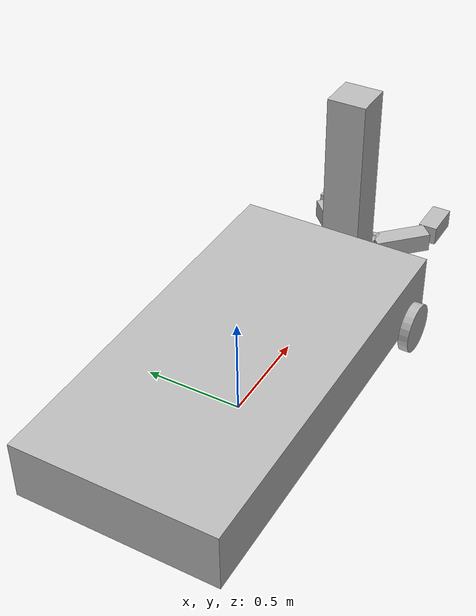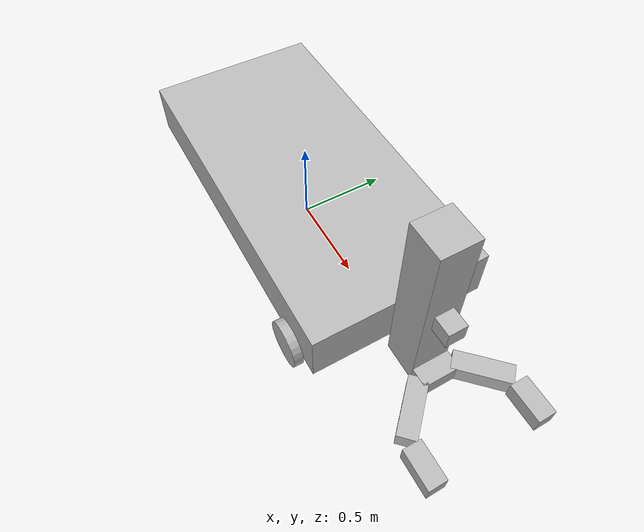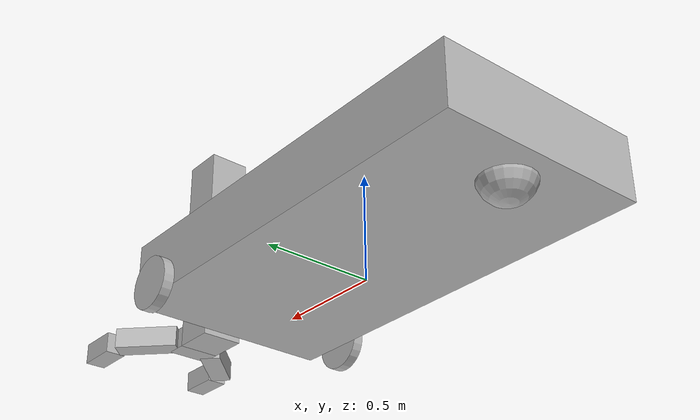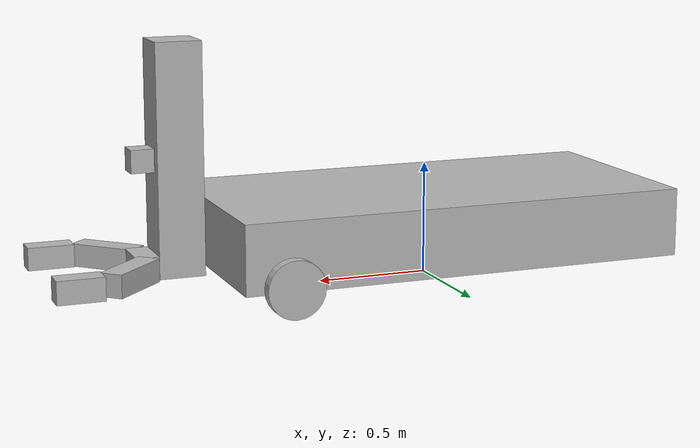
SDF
<?xml version="1.0" ?>
<sdf version="1.5">
  <model name="simple_mobile_manipulator">

    <include>
      <uri>model://my_gripper</uri>
      <pose>1.3 0 0.1 0 0 0</pose>
    </include>

    <include>
      <uri>model://my_robot</uri>
      <pose>0 0 0 0 0 0</pose>
    </include>

    <joint name="arm_gripper_joint" type="fixed">
      <parent>mobile_base::chassis</parent>
      <child>simple_gripper::riser</child>
    </joint>

    <!-- attach sensor to the gripper -->
    <include>
      <uri>model://camera</uri>
      <pose>1.3 0 0.6 0 0 0</pose>
    </include>

    <joint name="camera_joint" type="fixed">
      <child>camera::link</child>
      <parent>simple_gripper::palm</parent>
    </joint>

  </model>
</sdf>

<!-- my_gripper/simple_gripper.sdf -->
<sdf version="1.4">
    <model name="simple_gripper">
        <link name="riser">
            <pose>-0.15 0.0 0.5 0 0 0</pose>
            <inertial>
                <pose>0 0 -0.5 0 0 0</pose>
                <inertia>
                    <ixx>0.01</ixx>
                    <ixy>0</ixy>
                    <ixz>0</ixz>
                    <iyy>0.01</iyy>
                    <iyz>0</iyz>
                    <izz>0.01</izz>
                </inertia>
                <mass>10.0</mass>
            </inertial>
            <collision name="collision">
                <geometry>
                    <box>
                        <size>0.2 0.2 1.0</size>
                    </box>
                </geometry>
            </collision>
            <visual name="visual">
                <geometry>
                    <box>
                        <size>0.2 0.2 1.0</size>
                    </box>
                </geometry>
                <material>
                    <script>Gazebo/Purple</script>
                </material>
            </visual>
        </link>
        <link name="palm">
            <pose>0.0 0.0 0.05 0 0 0</pose>
            <inertial>
                <inertia>
                    <ixx>0.01</ixx>
                    <ixy>0</ixy>
                    <ixz>0</ixz>
                    <iyy>0.01</iyy>
                    <iyz>0</iyz>
                    <izz>0.01</izz>
                </inertia>
                <mass>0.5</mass>
            </inertial>
            <collision name="collision">
                <geometry>
                    <box>
                        <size>0.1 0.2 0.1</size>
                    </box>
                </geometry>
            </collision>
            <visual name="visual">
                <geometry>
                    <box>
                        <size>0.1 0.2 0.1</size>
                    </box>
                </geometry>
                <material>
                    <script>Gazebo/Red</script>
                </material>
            </visual>
        </link>
        <link name="left_finger">
            <pose>0.1 0.2 0.05 0 0 -0.78539</pose>
            <inertial>
                <inertia>
                    <ixx>0.01</ixx>
                    <ixy>0</ixy>
                    <ixz>0</ixz>
                    <iyy>0.01</iyy>
                    <iyz>0</iyz>
                    <izz>0.01</izz>
                </inertia>
                <mass>0.1</mass>
            </inertial>
            <collision name="collision">
                <geometry>
                    <box>
                        <size>0.1 0.3 0.1</size>
                    </box>
                </geometry>
            </collision>
            <visual name="visual">
                <geometry>
                    <box>
                        <size>0.1 0.3 0.1</size>
                    </box>
                </geometry>
                <material>
                    <script>Gazebo/Blue</script>
                </material>
            </visual>
        </link>
        <link name="left_finger_tip">
            <pose>0.336 0.3 0.05 0 0 1.5707</pose>
            <inertial>
                <inertia>
                    <ixx>0.01</ixx>
                    <ixy>0</ixy>
                    <ixz>0</ixz>
                    <iyy>0.01</iyy>
                    <iyz>0</iyz>
                    <izz>0.01</izz>
                </inertia>
                <mass>0.1</mass>
            </inertial>
            <collision name="collision">
                <geometry>
                    <box>
                        <size>0.1 0.2 0.1</size>
                    </box>
                </geometry>
            </collision>
            <visual name="visual">
                <geometry>
                    <box>
                        <size>0.1 0.2 0.1</size>
                    </box>
                </geometry>
                <material>
                    <script>Gazebo/Blue</script>
                </material>
            </visual>
        </link>
        <link name="right_finger">
            <pose>0.1 -0.2 0.05 0 0 .78539</pose>
            <inertial>
                <inertia>
                    <ixx>0.01</ixx>
                    <ixy>0</ixy>
                    <ixz>0</ixz>
                    <iyy>0.01</iyy>
                    <iyz>0</iyz>
                    <izz>0.01</izz>
                </inertia>
                <mass>0.1</mass>
            </inertial>
            <collision name="collision">
                <geometry>
                    <box>
                        <size>0.1 0.3 0.1</size>
                    </box>
                </geometry>
            </collision>
            <visual name="visual">
                <geometry>
                    <box>
                        <size>0.1 0.3 0.1</size>
                    </box>
                </geometry>
                <material>
                    <script>Gazebo/Green</script>
                </material>
            </visual>
        </link>
        <link name="right_finger_tip">
            <pose>0.336 -0.3 0.05 0 0 1.5707</pose>
            <inertial>
                <inertia>
                    <ixx>0.01</ixx>
                    <ixy>0</ixy>
                    <ixz>0</ixz>
                    <iyy>0.01</iyy>
                    <iyz>0</iyz>
                    <izz>0.01</izz>
                </inertia>
                <mass>0.1</mass>
            </inertial>
            <collision name="collision">
                <geometry>
                    <box>
                        <size>0.1 0.2 0.1</size>
                    </box>
                </geometry>
            </collision>
            <visual name="visual">
                <geometry>
                    <box>
                        <size>0.1 0.2 0.1</size>
                    </box>
                </geometry>
                <material>
                    <script>Gazebo/Green</script>
                </material>
            </visual>
        </link>
        <static>false</static>

          <joint name="palm_left_finger" type="revolute">
            <pose>0 -0.15 0 0 0 0</pose>
            <child>left_finger</child>
            <parent>palm</parent>
            <axis>
                <limit>
                    <lower>-0.4</lower>
                    <upper>0.4</upper>
                </limit>
                <xyz>0 0 1</xyz>
            </axis>
        </joint>
        <joint name="left_finger_tip" type="revolute">
            <pose>0 0.1 0 0 0 0</pose>
            <child>left_finger_tip</child>
            <parent>left_finger</parent>
            <axis>
                <limit>
                    <lower>-0.4</lower>
                    <upper>0.4</upper>
                </limit>
                <xyz>0 0 1</xyz>
            </axis>
        </joint>
        <joint name="palm_right_finger" type="revolute">
            <pose>0 0.15 0 0 0 0</pose>
            <child>right_finger</child>
            <parent>palm</parent>
            <axis>
                <limit>
                    <lower>-0.4</lower>
                    <upper>0.4</upper>
                </limit>
                <xyz>0 0 1</xyz>
            </axis>
        </joint>
        <joint name="right_finger_tip" type="revolute">
            <pose>0 0.1 0 0 0 0</pose>
            <child>right_finger_tip</child>
            <parent>right_finger</parent>
            <axis>
                <limit>
                    <lower>-0.4</lower>
                    <upper>0.4</upper>
                </limit>
                <xyz>0 0 1</xyz>
            </axis>
        </joint>
        <joint name="palm_riser" type="prismatic">
            <child>palm</child>
            <parent>riser</parent>
            <axis>
                <limit>
                    <lower>0</lower>
                    <upper>0.9</upper>
                </limit>
                <xyz>0 0 1</xyz>
            </axis>
        </joint>
    </model>
</sdf>

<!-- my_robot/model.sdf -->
<sdf version='1.5'>
  <model name="mobile_base">
    <link name='chassis'>
      <pose>0 0 .25 0 0 0</pose>

      <inertial>
        <mass>20.0</mass>
        <pose>-0.1 0 -0.1 0 0 0</pose>
        <inertia>
          <ixx>0.5</ixx>
          <iyy>1.0</iyy>
          <izz>0.1</izz>
        </inertia>
      </inertial>

      <collision name='collision'>
        <geometry>
          <box>
            <size>2 1 0.3</size>
          </box>
        </geometry>
      </collision>

      <visual name='visual'>
        <geometry>
          <box>
            <size>2 1 0.3</size>
          </box>
        </geometry>
      </visual>

      <collision name='caster_collision'>
        <pose>-0.8 0 -0.125 0 0 0</pose>
        <geometry>
          <sphere>
            <radius>.125</radius>
          </sphere>
        </geometry>

        <surface>
          <friction>
            <ode>
              <mu>0</mu>
              <mu2>0</mu2>
            </ode>
          </friction>
        </surface>
      </collision>

      <visual name='caster_visual'>
        <pose>-0.8 0 -0.125 0 0 0</pose>
        <geometry>
          <sphere>
            <radius>.125</radius>
          </sphere>
        </geometry>
      </visual>
    </link>
    <link name="left_wheel">
      <pose>0.8 0.535 0.125 0 1.5707 1.5707</pose>
      <collision name="collision">
        <geometry>
          <cylinder>
            <radius>.125</radius>
            <length>.05</length>
          </cylinder>
        </geometry>
      </collision>
      <visual name="visual">
        <geometry>
          <cylinder>
            <radius>.125</radius>
            <length>.05</length>
          </cylinder>
        </geometry>
      </visual>
    </link>

    <link name="right_wheel">
      <pose>0.8 -0.535 0.125 0 1.5707 1.5707</pose>
      <collision name="collision">
        <geometry>
          <cylinder>
            <radius>.125</radius>
            <length>.05</length>
          </cylinder>
        </geometry>
      </collision>
      <visual name="visual">
        <geometry>
          <cylinder>
            <radius>.125</radius>
            <length>.05</length>
          </cylinder>
        </geometry>
      </visual>
    </link>

    <joint type="revolute" name="left_wheel_hinge">
      <pose>0 0 -0.03 0 0 0</pose>
      <child>left_wheel</child>
      <parent>chassis</parent>
      <axis>
        <use_parent_model_frame>true</use_parent_model_frame>
        <xyz>0 1 0</xyz>
      </axis>
    </joint>

    <joint type="revolute" name="right_wheel_hinge">
      <pose>0 0 0.03 0 0 0</pose>
      <child>right_wheel</child>
      <parent>chassis</parent>
      <axis>
        <use_parent_model_frame>true</use_parent_model_frame>
        <xyz>0 1 0</xyz>
      </axis>
    </joint>

  </model>
 </sdf>

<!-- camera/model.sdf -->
<sdf version="1.5">
  <model name="camera">
    <pose>0 0 0.05 0 0 0</pose>
    <link name="link">
      <inertial>
        <mass>0.1</mass>
        <inertia>
          <ixx>0.000166667</ixx>
          <iyy>0.000166667</iyy>
          <izz>0.000166667</izz>
        </inertia>
      </inertial>
      <collision name="collision">
        <geometry>
          <box>
            <size>0.1 0.1 0.1</size>
          </box>
        </geometry>
      </collision>
      <visual name="visual">
        <geometry>
          <box>
            <size>0.1 0.1 0.1</size>
          </box>
        </geometry>
      </visual>
      <sensor name="camera" type="camera">
        <camera>
          <horizontal_fov>1.047</horizontal_fov>
          <image>
            <width>320</width>
            <height>240</height>
          </image>
          <clip>
            <near>0.1</near>
            <far>100</far>
          </clip>
        </camera>
        <always_on>1</always_on>
        <update_rate>30</update_rate>
        <visualize>true</visualize>
      </sensor>
    </link>
  </model>
</sdf>
